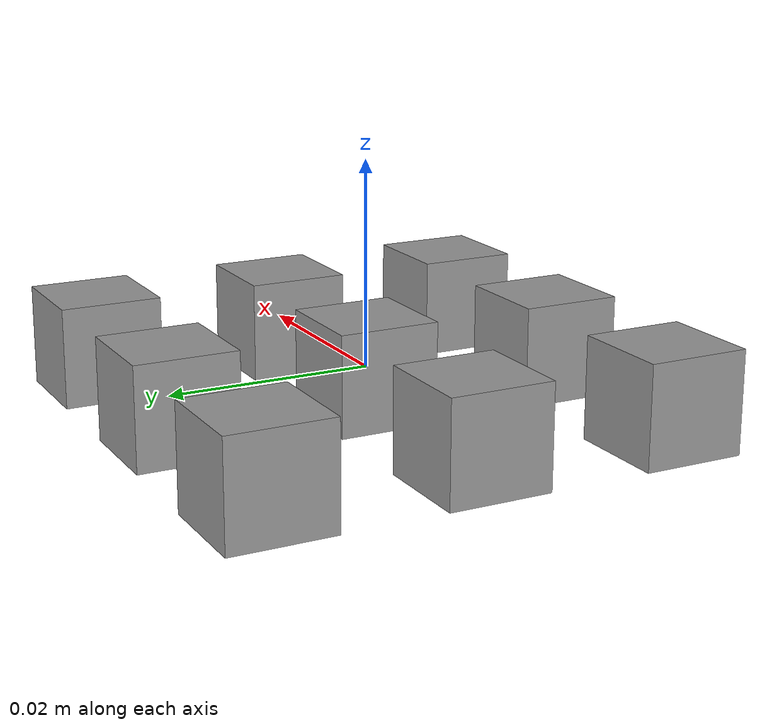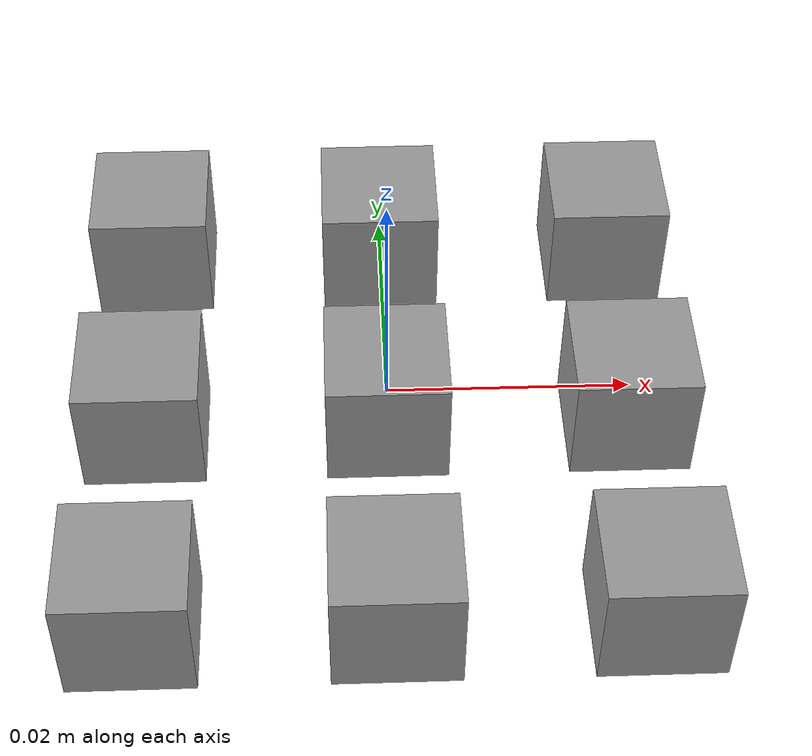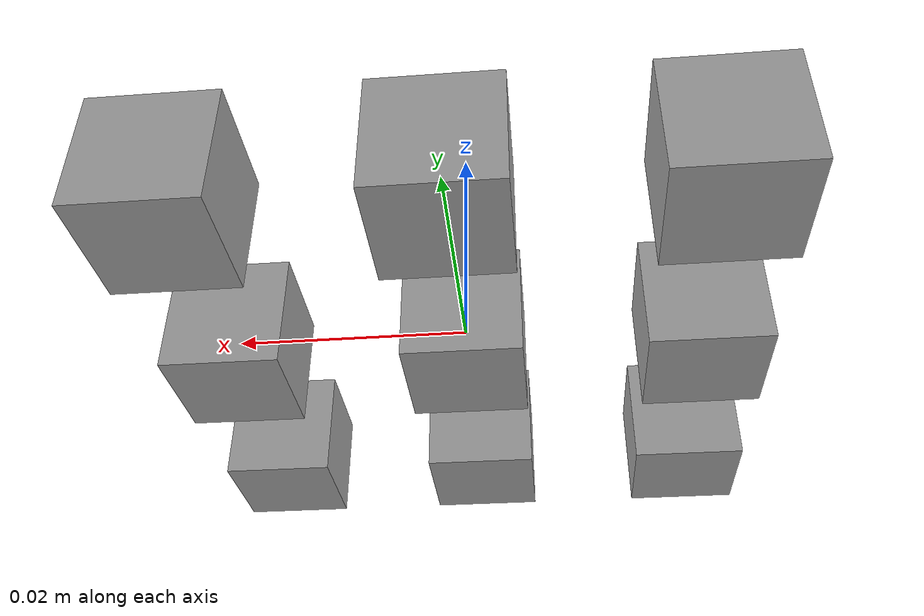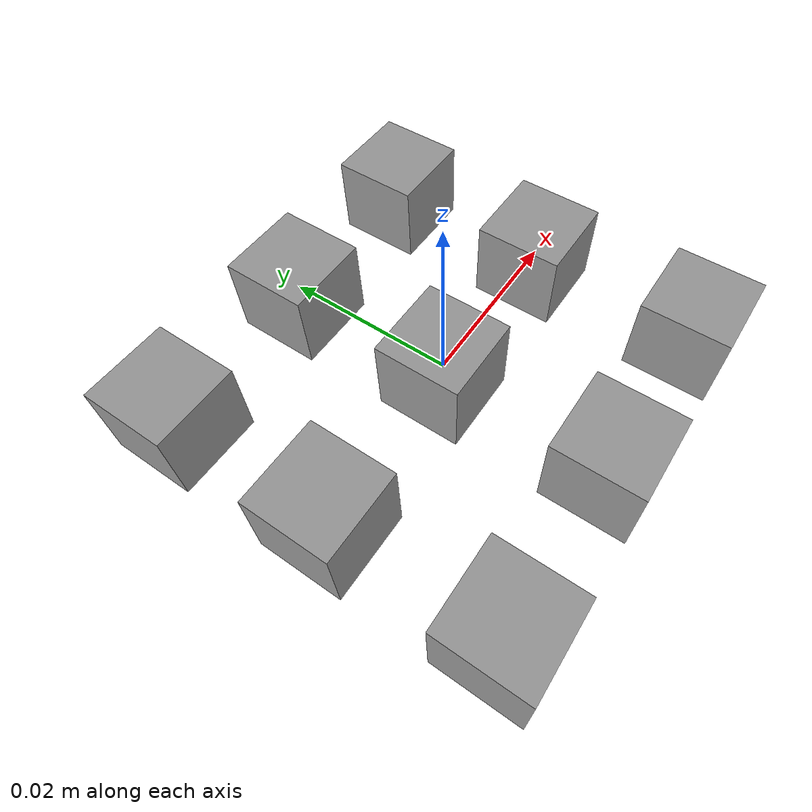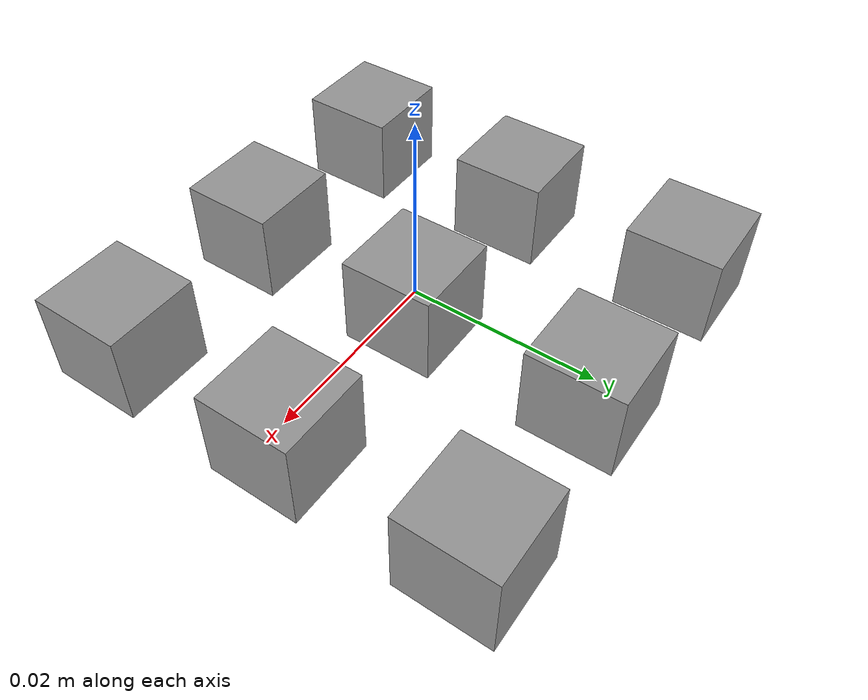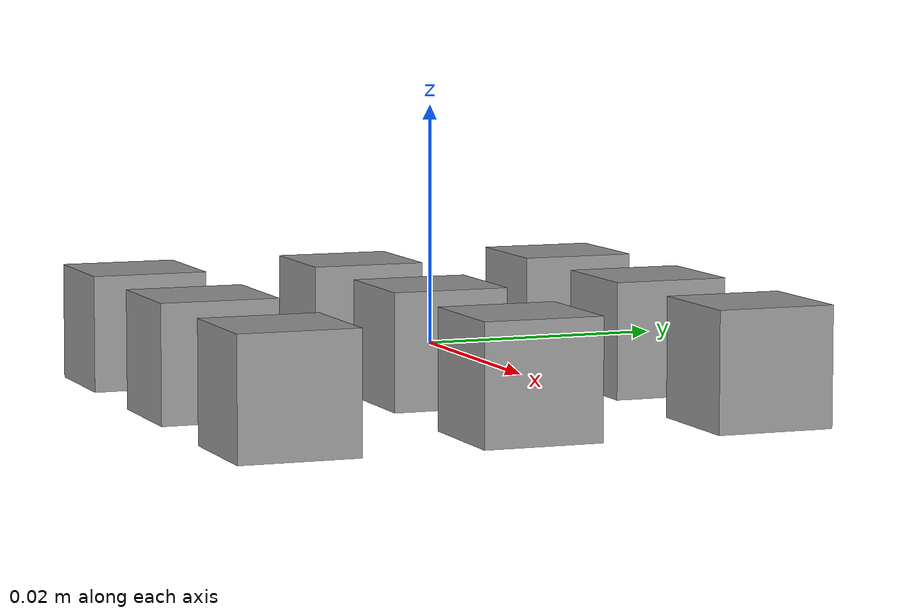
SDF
<?xml version='1.0'?>
<sdf version='1.6'>
  <model name='soft'>
    <link name='link_2_clone'>
      <inertial>
        <mass>0.001</mass>
        <inertia>
          <ixx>1.7e-07</ixx>
          <ixy>0</ixy>
          <ixz>0</ixz>
          <iyy>1.7e-07</iyy>
          <iyz>0</iyz>
          <izz>1.7e-07</izz>
        </inertia>
        <pose frame=''>0 0 0 0 -0 0</pose>
      </inertial>
      <pose frame=''>0 0.02 0 0 -0 0</pose>
      <gravity>1</gravity>
      <self_collide>0</self_collide>
      <kinematic>0</kinematic>
      <enable_wind>0</enable_wind>
      <visual name='visual'>
        <pose frame=''>0 0 0 0 -0 0</pose>
        <geometry>
          <box>
            <size>0.01 0.01 0.01</size>
          </box>
        </geometry>
        <material>
          <lighting>1</lighting>
          <script>
            <uri>file://media/materials/scripts/gazebo.material</uri>
            <name>Gazebo/Grey</name>
          </script>
          <shader type='pixel'>
            <normal_map>__default__</normal_map>
          </shader>
          <ambient>0.3 0.3 0.3 1</ambient>
          <diffuse>0.7 0.7 0.7 1</diffuse>
          <specular>0.01 0.01 0.01 1</specular>
          <emissive>0 0 0 1</emissive>
        </material>
        <transparency>0</transparency>
        <cast_shadows>1</cast_shadows>
      </visual>
      <collision name='collision'>
        <laser_retro>0</laser_retro>
        <max_contacts>10</max_contacts>
        <pose frame=''>0 0 0 0 -0 0</pose>
        <geometry>
          <box>
            <size>0.01 0.01 0.01</size>
          </box>
        </geometry>
        <surface>
          <friction>
            <ode>
              <mu>1</mu>
              <mu2>1</mu2>
              <fdir1>0 0 0</fdir1>
              <slip1>0</slip1>
              <slip2>0</slip2>
            </ode>
            <torsional>
              <coefficient>1</coefficient>
              <patch_radius>0</patch_radius>
              <surface_radius>0</surface_radius>
              <use_patch_radius>1</use_patch_radius>
              <ode>
                <slip>0</slip>
              </ode>
            </torsional>
          </friction>
          <bounce>
            <restitution_coefficient>0</restitution_coefficient>
            <threshold>1e+06</threshold>
          </bounce>
          <contact>
            <collide_without_contact>0</collide_without_contact>
            <collide_without_contact_bitmask>1</collide_without_contact_bitmask>
            <collide_bitmask>1</collide_bitmask>
            <ode>
              <soft_cfm>0</soft_cfm>
              <soft_erp>0.2</soft_erp>
              <kp>1e+13</kp>
              <kd>1</kd>
              <max_vel>0.01</max_vel>
              <min_depth>0</min_depth>
            </ode>
            <bullet>
              <split_impulse>1</split_impulse>
              <split_impulse_penetration_threshold>-0.01</split_impulse_penetration_threshold>
              <soft_cfm>0</soft_cfm>
              <soft_erp>0.2</soft_erp>
              <kp>1e+13</kp>
              <kd>1</kd>
            </bullet>
          </contact>
        </surface>
      </collision>
    </link>
    <link name='link_2_clone_0'>
      <inertial>
        <mass>0.001</mass>
        <inertia>
          <ixx>1.7e-07</ixx>
          <ixy>0</ixy>
          <ixz>0</ixz>
          <iyy>1.7e-07</iyy>
          <iyz>0</iyz>
          <izz>1.7e-07</izz>
        </inertia>
        <pose frame=''>0 0 0 0 -0 0</pose>
      </inertial>
      <pose frame=''>0.02 0 0 0 -0 0</pose>
      <gravity>1</gravity>
      <self_collide>0</self_collide>
      <kinematic>0</kinematic>
      <enable_wind>0</enable_wind>
      <visual name='visual'>
        <pose frame=''>0 0 0 0 -0 0</pose>
        <geometry>
          <box>
            <size>0.01 0.01 0.01</size>
          </box>
        </geometry>
        <material>
          <lighting>1</lighting>
          <script>
            <uri>file://media/materials/scripts/gazebo.material</uri>
            <name>Gazebo/Grey</name>
          </script>
          <shader type='pixel'>
            <normal_map>__default__</normal_map>
          </shader>
          <ambient>0.3 0.3 0.3 1</ambient>
          <diffuse>0.7 0.7 0.7 1</diffuse>
          <specular>0.01 0.01 0.01 1</specular>
          <emissive>0 0 0 1</emissive>
        </material>
        <transparency>0</transparency>
        <cast_shadows>1</cast_shadows>
      </visual>
      <collision name='collision'>
        <laser_retro>0</laser_retro>
        <max_contacts>10</max_contacts>
        <pose frame=''>0 0 0 0 -0 0</pose>
        <geometry>
          <box>
            <size>0.01 0.01 0.01</size>
          </box>
        </geometry>
        <surface>
          <friction>
            <ode>
              <mu>1</mu>
              <mu2>1</mu2>
              <fdir1>0 0 0</fdir1>
              <slip1>0</slip1>
              <slip2>0</slip2>
            </ode>
            <torsional>
              <coefficient>1</coefficient>
              <patch_radius>0</patch_radius>
              <surface_radius>0</surface_radius>
              <use_patch_radius>1</use_patch_radius>
              <ode>
                <slip>0</slip>
              </ode>
            </torsional>
          </friction>
          <bounce>
            <restitution_coefficient>0</restitution_coefficient>
            <threshold>1e+06</threshold>
          </bounce>
          <contact>
            <collide_without_contact>0</collide_without_contact>
            <collide_without_contact_bitmask>1</collide_without_contact_bitmask>
            <collide_bitmask>1</collide_bitmask>
            <ode>
              <soft_cfm>0</soft_cfm>
              <soft_erp>0.2</soft_erp>
              <kp>1e+13</kp>
              <kd>1</kd>
              <max_vel>0.01</max_vel>
              <min_depth>0</min_depth>
            </ode>
            <bullet>
              <split_impulse>1</split_impulse>
              <split_impulse_penetration_threshold>-0.01</split_impulse_penetration_threshold>
              <soft_cfm>0</soft_cfm>
              <soft_erp>0.2</soft_erp>
              <kp>1e+13</kp>
              <kd>1</kd>
            </bullet>
          </contact>
        </surface>
      </collision>
    </link>
    <link name='link_2_clone_1'>
      <inertial>
        <mass>0.001</mass>
        <inertia>
          <ixx>1.7e-07</ixx>
          <ixy>0</ixy>
          <ixz>0</ixz>
          <iyy>1.7e-07</iyy>
          <iyz>0</iyz>
          <izz>1.7e-07</izz>
        </inertia>
        <pose frame=''>0 0 0 0 -0 0</pose>
      </inertial>
      <pose frame=''>0.02 0.02 0 0 -0 0</pose>
      <gravity>1</gravity>
      <self_collide>0</self_collide>
      <kinematic>0</kinematic>
      <enable_wind>0</enable_wind>
      <visual name='visual'>
        <pose frame=''>0 0 0 0 -0 0</pose>
        <geometry>
          <box>
            <size>0.01 0.01 0.01</size>
          </box>
        </geometry>
        <material>
          <lighting>1</lighting>
          <script>
            <uri>file://media/materials/scripts/gazebo.material</uri>
            <name>Gazebo/Grey</name>
          </script>
          <shader type='pixel'>
            <normal_map>__default__</normal_map>
          </shader>
          <ambient>0.3 0.3 0.3 1</ambient>
          <diffuse>0.7 0.7 0.7 1</diffuse>
          <specular>0.01 0.01 0.01 1</specular>
          <emissive>0 0 0 1</emissive>
        </material>
        <transparency>0</transparency>
        <cast_shadows>1</cast_shadows>
      </visual>
      <collision name='collision'>
        <laser_retro>0</laser_retro>
        <max_contacts>10</max_contacts>
        <pose frame=''>0 0 0 0 -0 0</pose>
        <geometry>
          <box>
            <size>0.01 0.01 0.01</size>
          </box>
        </geometry>
        <surface>
          <friction>
            <ode>
              <mu>1</mu>
              <mu2>1</mu2>
              <fdir1>0 0 0</fdir1>
              <slip1>0</slip1>
              <slip2>0</slip2>
            </ode>
            <torsional>
              <coefficient>1</coefficient>
              <patch_radius>0</patch_radius>
              <surface_radius>0</surface_radius>
              <use_patch_radius>1</use_patch_radius>
              <ode>
                <slip>0</slip>
              </ode>
            </torsional>
          </friction>
          <bounce>
            <restitution_coefficient>0</restitution_coefficient>
            <threshold>1e+06</threshold>
          </bounce>
          <contact>
            <collide_without_contact>0</collide_without_contact>
            <collide_without_contact_bitmask>1</collide_without_contact_bitmask>
            <collide_bitmask>1</collide_bitmask>
            <ode>
              <soft_cfm>0</soft_cfm>
              <soft_erp>0.2</soft_erp>
              <kp>1e+13</kp>
              <kd>1</kd>
              <max_vel>0.01</max_vel>
              <min_depth>0</min_depth>
            </ode>
            <bullet>
              <split_impulse>1</split_impulse>
              <split_impulse_penetration_threshold>-0.01</split_impulse_penetration_threshold>
              <soft_cfm>0</soft_cfm>
              <soft_erp>0.2</soft_erp>
              <kp>1e+13</kp>
              <kd>1</kd>
            </bullet>
          </contact>
        </surface>
      </collision>
    </link>
    <link name='link_2_clone_2'>
      <inertial>
        <mass>0.001</mass>
        <inertia>
          <ixx>1.7e-07</ixx>
          <ixy>0</ixy>
          <ixz>0</ixz>
          <iyy>1.7e-07</iyy>
          <iyz>0</iyz>
          <izz>1.7e-07</izz>
        </inertia>
        <pose frame=''>0 0 0 0 -0 0</pose>
      </inertial>
      <pose frame=''>0.02 -0.02 0 0 -0 0</pose>
      <gravity>1</gravity>
      <self_collide>0</self_collide>
      <kinematic>0</kinematic>
      <enable_wind>0</enable_wind>
      <visual name='visual'>
        <pose frame=''>0 0 0 0 -0 0</pose>
        <geometry>
          <box>
            <size>0.01 0.01 0.01</size>
          </box>
        </geometry>
        <material>
          <lighting>1</lighting>
          <script>
            <uri>file://media/materials/scripts/gazebo.material</uri>
            <name>Gazebo/Grey</name>
          </script>
          <shader type='pixel'>
            <normal_map>__default__</normal_map>
          </shader>
          <ambient>0.3 0.3 0.3 1</ambient>
          <diffuse>0.7 0.7 0.7 1</diffuse>
          <specular>0.01 0.01 0.01 1</specular>
          <emissive>0 0 0 1</emissive>
        </material>
        <transparency>0</transparency>
        <cast_shadows>1</cast_shadows>
      </visual>
      <collision name='collision'>
        <laser_retro>0</laser_retro>
        <max_contacts>10</max_contacts>
        <pose frame=''>0 0 0 0 -0 0</pose>
        <geometry>
          <box>
            <size>0.01 0.01 0.01</size>
          </box>
        </geometry>
        <surface>
          <friction>
            <ode>
              <mu>1</mu>
              <mu2>1</mu2>
              <fdir1>0 0 0</fdir1>
              <slip1>0</slip1>
              <slip2>0</slip2>
            </ode>
            <torsional>
              <coefficient>1</coefficient>
              <patch_radius>0</patch_radius>
              <surface_radius>0</surface_radius>
              <use_patch_radius>1</use_patch_radius>
              <ode>
                <slip>0</slip>
              </ode>
            </torsional>
          </friction>
          <bounce>
            <restitution_coefficient>0</restitution_coefficient>
            <threshold>1e+06</threshold>
          </bounce>
          <contact>
            <collide_without_contact>0</collide_without_contact>
            <collide_without_contact_bitmask>1</collide_without_contact_bitmask>
            <collide_bitmask>1</collide_bitmask>
            <ode>
              <soft_cfm>0</soft_cfm>
              <soft_erp>0.2</soft_erp>
              <kp>1e+13</kp>
              <kd>1</kd>
              <max_vel>0.01</max_vel>
              <min_depth>0</min_depth>
            </ode>
            <bullet>
              <split_impulse>1</split_impulse>
              <split_impulse_penetration_threshold>-0.01</split_impulse_penetration_threshold>
              <soft_cfm>0</soft_cfm>
              <soft_erp>0.2</soft_erp>
              <kp>1e+13</kp>
              <kd>1</kd>
            </bullet>
          </contact>
        </surface>
      </collision>
    </link>
    <link name='link_2_clone_2_clone'>
      <inertial>
        <mass>0.001</mass>
        <inertia>
          <ixx>1.7e-07</ixx>
          <ixy>0</ixy>
          <ixz>0</ixz>
          <iyy>1.7e-07</iyy>
          <iyz>0</iyz>
          <izz>1.7e-07</izz>
        </inertia>
        <pose frame=''>0 0 0 0 -0 0</pose>
      </inertial>
      <pose frame=''>0 0 0 0 -0 0</pose>
      <gravity>1</gravity>
      <self_collide>0</self_collide>
      <kinematic>0</kinematic>
      <enable_wind>0</enable_wind>
      <visual name='visual'>
        <pose frame=''>0 0 0 0 -0 0</pose>
        <geometry>
          <box>
            <size>0.01 0.01 0.01</size>
          </box>
        </geometry>
        <material>
          <lighting>1</lighting>
          <script>
            <uri>file://media/materials/scripts/gazebo.material</uri>
            <name>Gazebo/Grey</name>
          </script>
          <shader type='pixel'>
            <normal_map>__default__</normal_map>
          </shader>
          <ambient>0.3 0.3 0.3 1</ambient>
          <diffuse>0.7 0.7 0.7 1</diffuse>
          <specular>0.01 0.01 0.01 1</specular>
          <emissive>0 0 0 1</emissive>
        </material>
        <transparency>0</transparency>
        <cast_shadows>1</cast_shadows>
      </visual>
      <collision name='collision'>
        <laser_retro>0</laser_retro>
        <max_contacts>10</max_contacts>
        <pose frame=''>0 0 0 0 -0 0</pose>
        <geometry>
          <box>
            <size>0.01 0.01 0.01</size>
          </box>
        </geometry>
        <surface>
          <friction>
            <ode>
              <mu>1</mu>
              <mu2>1</mu2>
              <fdir1>0 0 0</fdir1>
              <slip1>0</slip1>
              <slip2>0</slip2>
            </ode>
            <torsional>
              <coefficient>1</coefficient>
              <patch_radius>0</patch_radius>
              <surface_radius>0</surface_radius>
              <use_patch_radius>1</use_patch_radius>
              <ode>
                <slip>0</slip>
              </ode>
            </torsional>
          </friction>
          <bounce>
            <restitution_coefficient>0</restitution_coefficient>
            <threshold>1e+06</threshold>
          </bounce>
          <contact>
            <collide_without_contact>0</collide_without_contact>
            <collide_without_contact_bitmask>1</collide_without_contact_bitmask>
            <collide_bitmask>1</collide_bitmask>
            <ode>
              <soft_cfm>0</soft_cfm>
              <soft_erp>0.2</soft_erp>
              <kp>1e+13</kp>
              <kd>1</kd>
              <max_vel>0.01</max_vel>
              <min_depth>0</min_depth>
            </ode>
            <bullet>
              <split_impulse>1</split_impulse>
              <split_impulse_penetration_threshold>-0.01</split_impulse_penetration_threshold>
              <soft_cfm>0</soft_cfm>
              <soft_erp>0.2</soft_erp>
              <kp>1e+13</kp>
              <kd>1</kd>
            </bullet>
          </contact>
        </surface>
      </collision>
    </link>
    <link name='link_2_clone_3'>
      <inertial>
        <mass>0.001</mass>
        <inertia>
          <ixx>1.7e-07</ixx>
          <ixy>0</ixy>
          <ixz>0</ixz>
          <iyy>1.7e-07</iyy>
          <iyz>0</iyz>
          <izz>1.7e-07</izz>
        </inertia>
        <pose frame=''>0 0 0 0 -0 0</pose>
      </inertial>
      <pose frame=''>0 -0.02 0 0 -0 0</pose>
      <gravity>1</gravity>
      <self_collide>0</self_collide>
      <kinematic>0</kinematic>
      <enable_wind>0</enable_wind>
      <visual name='visual'>
        <pose frame=''>0 0 0 0 -0 0</pose>
        <geometry>
          <box>
            <size>0.01 0.01 0.01</size>
          </box>
        </geometry>
        <material>
          <lighting>1</lighting>
          <script>
            <uri>file://media/materials/scripts/gazebo.material</uri>
            <name>Gazebo/Grey</name>
          </script>
          <shader type='pixel'>
            <normal_map>__default__</normal_map>
          </shader>
          <ambient>0.3 0.3 0.3 1</ambient>
          <diffuse>0.7 0.7 0.7 1</diffuse>
          <specular>0.01 0.01 0.01 1</specular>
          <emissive>0 0 0 1</emissive>
        </material>
        <transparency>0</transparency>
        <cast_shadows>1</cast_shadows>
      </visual>
      <collision name='collision'>
        <laser_retro>0</laser_retro>
        <max_contacts>10</max_contacts>
        <pose frame=''>0 0 0 0 -0 0</pose>
        <geometry>
          <box>
            <size>0.01 0.01 0.01</size>
          </box>
        </geometry>
        <surface>
          <friction>
            <ode>
              <mu>1</mu>
              <mu2>1</mu2>
              <fdir1>0 0 0</fdir1>
              <slip1>0</slip1>
              <slip2>0</slip2>
            </ode>
            <torsional>
              <coefficient>1</coefficient>
              <patch_radius>0</patch_radius>
              <surface_radius>0</surface_radius>
              <use_patch_radius>1</use_patch_radius>
              <ode>
                <slip>0</slip>
              </ode>
            </torsional>
          </friction>
          <bounce>
            <restitution_coefficient>0</restitution_coefficient>
            <threshold>1e+06</threshold>
          </bounce>
          <contact>
            <collide_without_contact>0</collide_without_contact>
            <collide_without_contact_bitmask>1</collide_without_contact_bitmask>
            <collide_bitmask>1</collide_bitmask>
            <ode>
              <soft_cfm>0</soft_cfm>
              <soft_erp>0.2</soft_erp>
              <kp>1e+13</kp>
              <kd>1</kd>
              <max_vel>0.01</max_vel>
              <min_depth>0</min_depth>
            </ode>
            <bullet>
              <split_impulse>1</split_impulse>
              <split_impulse_penetration_threshold>-0.01</split_impulse_penetration_threshold>
              <soft_cfm>0</soft_cfm>
              <soft_erp>0.2</soft_erp>
              <kp>1e+13</kp>
              <kd>1</kd>
            </bullet>
          </contact>
        </surface>
      </collision>
    </link>
    <link name='link_2_clone_4'>
      <inertial>
        <mass>0.001</mass>
        <inertia>
          <ixx>1.7e-07</ixx>
          <ixy>0</ixy>
          <ixz>0</ixz>
          <iyy>1.7e-07</iyy>
          <iyz>0</iyz>
          <izz>1.7e-07</izz>
        </inertia>
        <pose frame=''>0 0 0 0 -0 0</pose>
      </inertial>
      <pose frame=''>-0.02 -0.02 0 0 -0 0</pose>
      <gravity>1</gravity>
      <self_collide>0</self_collide>
      <kinematic>0</kinematic>
      <enable_wind>0</enable_wind>
      <visual name='visual'>
        <pose frame=''>0 0 0 0 -0 0</pose>
        <geometry>
          <box>
            <size>0.01 0.01 0.01</size>
          </box>
        </geometry>
        <material>
          <lighting>1</lighting>
          <script>
            <uri>file://media/materials/scripts/gazebo.material</uri>
            <name>Gazebo/Grey</name>
          </script>
          <shader type='pixel'>
            <normal_map>__default__</normal_map>
          </shader>
          <ambient>0.3 0.3 0.3 1</ambient>
          <diffuse>0.7 0.7 0.7 1</diffuse>
          <specular>0.01 0.01 0.01 1</specular>
          <emissive>0 0 0 1</emissive>
        </material>
        <transparency>0</transparency>
        <cast_shadows>1</cast_shadows>
      </visual>
      <collision name='collision'>
        <laser_retro>0</laser_retro>
        <max_contacts>10</max_contacts>
        <pose frame=''>0 0 0 0 -0 0</pose>
        <geometry>
          <box>
            <size>0.01 0.01 0.01</size>
          </box>
        </geometry>
        <surface>
          <friction>
            <ode>
              <mu>1</mu>
              <mu2>1</mu2>
              <fdir1>0 0 0</fdir1>
              <slip1>0</slip1>
              <slip2>0</slip2>
            </ode>
            <torsional>
              <coefficient>1</coefficient>
              <patch_radius>0</patch_radius>
              <surface_radius>0</surface_radius>
              <use_patch_radius>1</use_patch_radius>
              <ode>
                <slip>0</slip>
              </ode>
            </torsional>
          </friction>
          <bounce>
            <restitution_coefficient>0</restitution_coefficient>
            <threshold>1e+06</threshold>
          </bounce>
          <contact>
            <collide_without_contact>0</collide_without_contact>
            <collide_without_contact_bitmask>1</collide_without_contact_bitmask>
            <collide_bitmask>1</collide_bitmask>
            <ode>
              <soft_cfm>0</soft_cfm>
              <soft_erp>0.2</soft_erp>
              <kp>1e+13</kp>
              <kd>1</kd>
              <max_vel>0.01</max_vel>
              <min_depth>0</min_depth>
            </ode>
            <bullet>
              <split_impulse>1</split_impulse>
              <split_impulse_penetration_threshold>-0.01</split_impulse_penetration_threshold>
              <soft_cfm>0</soft_cfm>
              <soft_erp>0.2</soft_erp>
              <kp>1e+13</kp>
              <kd>1</kd>
            </bullet>
          </contact>
        </surface>
      </collision>
    </link>
    <link name='link_2_clone_5'>
      <inertial>
        <mass>0.001</mass>
        <inertia>
          <ixx>1.7e-07</ixx>
          <ixy>0</ixy>
          <ixz>0</ixz>
          <iyy>1.7e-07</iyy>
          <iyz>0</iyz>
          <izz>1.7e-07</izz>
        </inertia>
        <pose frame=''>0 0 0 0 -0 0</pose>
      </inertial>
      <pose frame=''>-0.02 0 0 0 -0 0</pose>
      <gravity>1</gravity>
      <self_collide>0</self_collide>
      <kinematic>0</kinematic>
      <enable_wind>0</enable_wind>
      <visual name='visual'>
        <pose frame=''>0 0 0 0 -0 0</pose>
        <geometry>
          <box>
            <size>0.01 0.01 0.01</size>
          </box>
        </geometry>
        <material>
          <lighting>1</lighting>
          <script>
            <uri>file://media/materials/scripts/gazebo.material</uri>
            <name>Gazebo/Grey</name>
          </script>
          <shader type='pixel'>
            <normal_map>__default__</normal_map>
          </shader>
          <ambient>0.3 0.3 0.3 1</ambient>
          <diffuse>0.7 0.7 0.7 1</diffuse>
          <specular>0.01 0.01 0.01 1</specular>
          <emissive>0 0 0 1</emissive>
        </material>
        <transparency>0</transparency>
        <cast_shadows>1</cast_shadows>
      </visual>
      <collision name='collision'>
        <laser_retro>0</laser_retro>
        <max_contacts>10</max_contacts>
        <pose frame=''>0 0 0 0 -0 0</pose>
        <geometry>
          <box>
            <size>0.01 0.01 0.01</size>
          </box>
        </geometry>
        <surface>
          <friction>
            <ode>
              <mu>1</mu>
              <mu2>1</mu2>
              <fdir1>0 0 0</fdir1>
              <slip1>0</slip1>
              <slip2>0</slip2>
            </ode>
            <torsional>
              <coefficient>1</coefficient>
              <patch_radius>0</patch_radius>
              <surface_radius>0</surface_radius>
              <use_patch_radius>1</use_patch_radius>
              <ode>
                <slip>0</slip>
              </ode>
            </torsional>
          </friction>
          <bounce>
            <restitution_coefficient>0</restitution_coefficient>
            <threshold>1e+06</threshold>
          </bounce>
          <contact>
            <collide_without_contact>0</collide_without_contact>
            <collide_without_contact_bitmask>1</collide_without_contact_bitmask>
            <collide_bitmask>1</collide_bitmask>
            <ode>
              <soft_cfm>0</soft_cfm>
              <soft_erp>0.2</soft_erp>
              <kp>1e+13</kp>
              <kd>1</kd>
              <max_vel>0.01</max_vel>
              <min_depth>0</min_depth>
            </ode>
            <bullet>
              <split_impulse>1</split_impulse>
              <split_impulse_penetration_threshold>-0.01</split_impulse_penetration_threshold>
              <soft_cfm>0</soft_cfm>
              <soft_erp>0.2</soft_erp>
              <kp>1e+13</kp>
              <kd>1</kd>
            </bullet>
          </contact>
        </surface>
      </collision>
    </link>
    <link name='link_2_clone_6'>
      <inertial>
        <mass>0.001</mass>
        <inertia>
          <ixx>1.7e-07</ixx>
          <ixy>0</ixy>
          <ixz>0</ixz>
          <iyy>1.7e-07</iyy>
          <iyz>0</iyz>
          <izz>1.7e-07</izz>
        </inertia>
        <pose frame=''>0 0 0 0 -0 0</pose>
      </inertial>
      <pose frame=''>-0.02 0.02 0 0 -0 0</pose>
      <gravity>1</gravity>
      <self_collide>0</self_collide>
      <kinematic>0</kinematic>
      <enable_wind>0</enable_wind>
      <visual name='visual'>
        <pose frame=''>0 0 0 0 -0 0</pose>
        <geometry>
          <box>
            <size>0.01 0.01 0.01</size>
          </box>
        </geometry>
        <material>
          <lighting>1</lighting>
          <script>
            <uri>file://media/materials/scripts/gazebo.material</uri>
            <name>Gazebo/Grey</name>
          </script>
          <shader type='pixel'>
            <normal_map>__default__</normal_map>
          </shader>
          <ambient>0.3 0.3 0.3 1</ambient>
          <diffuse>0.7 0.7 0.7 1</diffuse>
          <specular>0.01 0.01 0.01 1</specular>
          <emissive>0 0 0 1</emissive>
        </material>
        <transparency>0</transparency>
        <cast_shadows>1</cast_shadows>
      </visual>
      <collision name='collision'>
        <laser_retro>0</laser_retro>
        <max_contacts>10</max_contacts>
        <pose frame=''>0 0 0 0 -0 0</pose>
        <geometry>
          <box>
            <size>0.01 0.01 0.01</size>
          </box>
        </geometry>
        <surface>
          <friction>
            <ode>
              <mu>1</mu>
              <mu2>1</mu2>
              <fdir1>0 0 0</fdir1>
              <slip1>0</slip1>
              <slip2>0</slip2>
            </ode>
            <torsional>
              <coefficient>1</coefficient>
              <patch_radius>0</patch_radius>
              <surface_radius>0</surface_radius>
              <use_patch_radius>1</use_patch_radius>
              <ode>
                <slip>0</slip>
              </ode>
            </torsional>
          </friction>
          <bounce>
            <restitution_coefficient>0</restitution_coefficient>
            <threshold>1e+06</threshold>
          </bounce>
          <contact>
            <collide_without_contact>0</collide_without_contact>
            <collide_without_contact_bitmask>1</collide_without_contact_bitmask>
            <collide_bitmask>1</collide_bitmask>
            <ode>
              <soft_cfm>0</soft_cfm>
              <soft_erp>0.2</soft_erp>
              <kp>1e+13</kp>
              <kd>1</kd>
              <max_vel>0.01</max_vel>
              <min_depth>0</min_depth>
            </ode>
            <bullet>
              <split_impulse>1</split_impulse>
              <split_impulse_penetration_threshold>-0.01</split_impulse_penetration_threshold>
              <soft_cfm>0</soft_cfm>
              <soft_erp>0.2</soft_erp>
              <kp>1e+13</kp>
              <kd>1</kd>
            </bullet>
          </contact>
        </surface>
      </collision>
    </link>
    <joint name='link_2_clone_0_JOINT_8' type='ball'>
      <parent>link_2_clone_0</parent>
      <child>link_2_clone_2</child>
      <pose frame=''>0 0 0 0 -0 0</pose>
      <physics>
        <ode>
          <limit>
            <cfm>0</cfm>
            <erp>0.2</erp>
          </limit>
          <suspension>
            <cfm>0</cfm>
            <erp>0.2</erp>
          </suspension>
        </ode>
      </physics>
    </joint>
    <joint name='link_2_clone_0_JOINT_9' type='ball'>
      <parent>link_2_clone_0</parent>
      <child>link_2_clone_1</child>
      <pose frame=''>0 0 0 0 -0 0</pose>
      <physics>
        <ode>
          <limit>
            <cfm>0</cfm>
            <erp>0.2</erp>
          </limit>
          <suspension>
            <cfm>0</cfm>
            <erp>0.2</erp>
          </suspension>
        </ode>
      </physics>
    </joint>
    <joint name='link_2_clone_2_clone_JOINT_0' type='ball'>
      <parent>link_2_clone_2_clone</parent>
      <child>link_2_clone_0</child>
      <pose frame=''>0 0 0 0 -0 0</pose>
      <physics>
        <ode>
          <limit>
            <cfm>0</cfm>
            <erp>0.2</erp>
          </limit>
          <suspension>
            <cfm>0</cfm>
            <erp>0.2</erp>
          </suspension>
        </ode>
      </physics>
    </joint>
    <joint name='link_2_clone_2_clone_JOINT_1' type='ball'>
      <parent>link_2_clone_2_clone</parent>
      <child>link_2_clone_5</child>
      <pose frame=''>0 0 0 0 -0 0</pose>
      <physics>
        <ode>
          <limit>
            <cfm>0</cfm>
            <erp>0.2</erp>
          </limit>
          <suspension>
            <cfm>0</cfm>
            <erp>0.2</erp>
          </suspension>
        </ode>
      </physics>
    </joint>
    <joint name='link_2_clone_2_clone_JOINT_2' type='ball'>
      <parent>link_2_clone_2_clone</parent>
      <child>link_2_clone</child>
      <pose frame=''>0 0 0 0 -0 0</pose>
      <physics>
        <ode>
          <limit>
            <cfm>0</cfm>
            <erp>0.2</erp>
          </limit>
          <suspension>
            <cfm>0</cfm>
            <erp>0.2</erp>
          </suspension>
        </ode>
      </physics>
    </joint>
    <joint name='link_2_clone_2_clone_JOINT_3' type='ball'>
      <parent>link_2_clone_2_clone</parent>
      <child>link_2_clone_3</child>
      <pose frame=''>0 0 0 0 -0 0</pose>
      <physics>
        <ode>
          <limit>
            <cfm>0</cfm>
            <erp>0.2</erp>
          </limit>
          <suspension>
            <cfm>0</cfm>
            <erp>0.2</erp>
          </suspension>
        </ode>
      </physics>
    </joint>
    <joint name='link_2_clone_3_JOINT_11' type='ball'>
      <parent>link_2_clone_3</parent>
      <child>link_2_clone_2</child>
      <pose frame=''>0 0 0 0 -0 0</pose>
      <physics>
        <ode>
          <limit>
            <cfm>0</cfm>
            <erp>0.2</erp>
          </limit>
          <suspension>
            <cfm>0</cfm>
            <erp>0.2</erp>
          </suspension>
        </ode>
      </physics>
    </joint>
    <joint name='link_2_clone_4_JOINT_10' type='ball'>
      <parent>link_2_clone_4</parent>
      <child>link_2_clone_3</child>
      <pose frame=''>0 0 0 0 -0 0</pose>
      <physics>
        <ode>
          <limit>
            <cfm>0</cfm>
            <erp>0.2</erp>
          </limit>
          <suspension>
            <cfm>0</cfm>
            <erp>0.2</erp>
          </suspension>
        </ode>
      </physics>
    </joint>
    <joint name='link_2_clone_5_JOINT_6' type='ball'>
      <parent>link_2_clone_5</parent>
      <child>link_2_clone_4</child>
      <pose frame=''>0 0 0 0 -0 0</pose>
      <physics>
        <ode>
          <limit>
            <cfm>0</cfm>
            <erp>0.2</erp>
          </limit>
          <suspension>
            <cfm>0</cfm>
            <erp>0.2</erp>
          </suspension>
        </ode>
      </physics>
    </joint>
    <joint name='link_2_clone_5_JOINT_7' type='ball'>
      <parent>link_2_clone_5</parent>
      <child>link_2_clone_6</child>
      <pose frame=''>0 0 0 0 -0 0</pose>
      <physics>
        <ode>
          <limit>
            <cfm>0</cfm>
            <erp>0.2</erp>
          </limit>
          <suspension>
            <cfm>0</cfm>
            <erp>0.2</erp>
          </suspension>
        </ode>
      </physics>
    </joint>
    <joint name='link_2_clone_6_JOINT_12' type='ball'>
      <parent>link_2_clone_6</parent>
      <child>link_2_clone</child>
      <pose frame=''>0 0 0 0 -0 0</pose>
      <physics>
        <ode>
          <limit>
            <cfm>0</cfm>
            <erp>0.2</erp>
          </limit>
          <suspension>
            <cfm>0</cfm>
            <erp>0.2</erp>
          </suspension>
        </ode>
      </physics>
    </joint>
    <joint name='link_2_clone_JOINT_13' type='ball'>
      <parent>link_2_clone</parent>
      <child>link_2_clone_1</child>
      <pose frame=''>0 0 0 0 -0 0</pose>
      <physics>
        <ode>
          <limit>
            <cfm>0</cfm>
            <erp>0.2</erp>
          </limit>
          <suspension>
            <cfm>0</cfm>
            <erp>0.2</erp>
          </suspension>
        </ode>
      </physics>
    </joint>
    <static>0</static>
    <allow_auto_disable>1</allow_auto_disable>
  </model>
</sdf>
